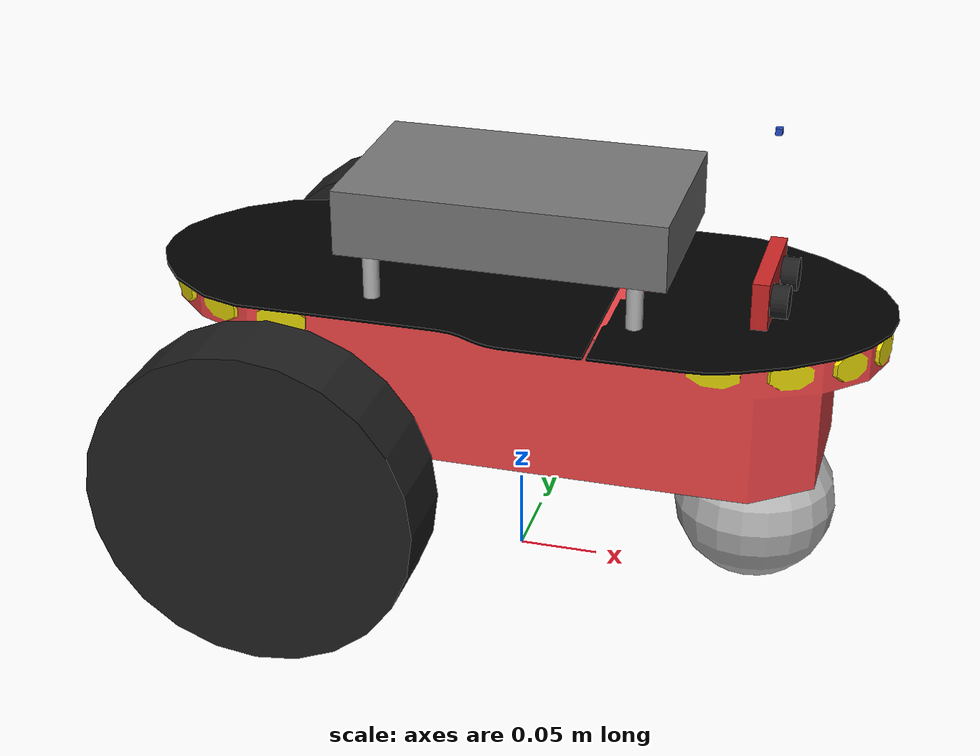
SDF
<?xml version="1.0" ?>

<sdf version="1.5">
  <!-- http://sdformat.org/spec?elem=sensor&ver=1.5 -->
  <model name="tankbot">
    <link name="chassis">
      <pose>0 0 0.11  0 0 0</pose>
      <inertial>
        <pose>0.04000000000000001 0 0  0 0 0</pose>
        <mass>2.0</mass>
        <inertia>
          <ixx>0.008333333333333335</ixx>
          <iyy>0.02833333333333334</iyy>
          <izz>0.03333333333333334</izz>
          <ixy>0</ixy>
          <ixz>0</ixz>
          <iyz>0</iyz>
        </inertia>
      </inertial>
      <collision name="collision">
        <geometry>
          <box>
            <size>0.4 0.2 0.1</size>
          </box>
        </geometry>
      </collision>
      <visual name='visual'>
        <pose>0 0 0.05 0 0 0</pose>
        <geometry>
          <mesh>
            <uri>model://pioneer2dx/meshes/chassis.dae</uri>
            <scale>0.9 0.5 0.5</scale>
          </mesh>
        </geometry>
      </visual>

      <collision name='caster_collision'>
        <pose>0.15 0 -0.05 0 0 0</pose>
        <geometry>
            <sphere>
            <radius>.05</radius>
          </sphere>
        </geometry>
        <surface>
          <friction>
            <ode>
              <mu>0</mu>
              <mu2>0</mu2>
              <slip1>1.0</slip1>
              <slip2>1.0</slip2>
            </ode>
          </friction>
        </surface>
      </collision>

      <visual name='caster_visual'>
        <pose>0.15 0 -0.05 0 0 0</pose>
        <geometry>
          <sphere>
            <radius>.05</radius>
          </sphere>
        </geometry>
      </visual>
    </link>

    <link name="wheel_rl">
      <pose>
       -0.12 0.14 0.1
       -1.5707963267948966 0 0
      </pose>
      <inertial>
        <mass>0.25</mass>
        <inertia>
          <ixx>0.0006770833333333335</ixx>
          <iyy>0.0006770833333333335</iyy>
          <izz>0.0012500000000000002</izz>
          <ixy>0</ixy>
          <ixz>0</ixz>
          <iyz>0</iyz>
        </inertia>
      </inertial>
      <collision name="collision">
        <geometry>
          <cylinder>
            <radius>0.1</radius>
            <length>0.05</length>
          </cylinder>
        </geometry>
      </collision>
      <visual name="visual">
        <geometry>
          <cylinder>
            <radius>0.1</radius>
            <length>0.05</length>
          </cylinder>
        </geometry>
        <material>
          <script>
            <uri>file://media/materials/scripts/gazebo.material</uri>
            <name>Gazebo/Black</name>
          </script>
        </material>
      </visual>
    </link>
    <joint name="wheel_rl_drive" type="revolute">
      <parent>chassis</parent>
      <child>wheel_rl</child>
      <axis>
        <xyz>0 0 1</xyz>
      </axis>
    </joint>

    <link name="wheel_rr">
      <pose>
       -0.12 -0.14 0.1
       -1.5707963267948966 0 0
      </pose>
      <inertial>
        <mass>0.25</mass>
        <inertia>
          <ixx>0.0006770833333333335</ixx>
          <iyy>0.0006770833333333335</iyy>
          <izz>0.0012500000000000002</izz>
          <ixy>0</ixy>
          <ixz>0</ixz>
          <iyz>0</iyz>
        </inertia>
      </inertial>
      <collision name="collision">
        <geometry>
          <cylinder>
            <radius>0.1</radius>
            <length>0.05</length>
          </cylinder>
        </geometry>
      </collision>
      <visual name="visual">
        <geometry>
          <cylinder>
            <radius>0.1</radius>
            <length>0.05</length>
          </cylinder>
        </geometry>
        <material>
          <script>
            <uri>file://media/materials/scripts/gazebo.material</uri>
            <name>Gazebo/Black</name>
          </script>
        </material>
      </visual>
    </link>
    <joint name="wheel_rr_drive" type="revolute">
      <parent>chassis</parent>
      <child>wheel_rr</child>
      <axis>
        <xyz>0 0 1</xyz>
      </axis>
    </joint>

    <include>
      <uri>model://ultrasonic_sensor</uri>
      <pose>
        0.15 0.0 0.2
        0.0 0.0 0.0
      </pose>
    </include>

    <joint name="sonar_joint" type="fixed">
      <child>ultrasonic_sensor::link</child>
      <parent>chassis</parent>
    </joint>

    <include>
      <uri>model://camera_sensor</uri>
      <pose>
        0.15 0.0 0.3
        0.0 0.0 0.0
      </pose>
    </include>

    <joint name="camera_joint" type="fixed">
      <child>camera_sensor::link</child>
      <parent>chassis</parent>
    </joint>

    <include>
      <uri>model://mainboard</uri>
      <pose>
        0.0 0.0 0.0
        0.0 0.0 0.0
      </pose>
    </include>

    <joint name="board_joint" type="fixed">
      <child>mainboard::boarder</child>
      <parent>chassis</parent>
    </joint>
  </model>
</sdf>

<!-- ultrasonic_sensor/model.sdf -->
<sdf version="1.7">
  <model name="ultrasonic_sensor">
    <pose>0 0 0.02 0 0 0</pose>
    <link name="link">

      <inertial>
        <mass>0.1</mass>
      </inertial>

      <visual name="visual">
        <geometry>
          <box>
            <size>0.01 0.07 0.04</size>
          </box>
        </geometry>
        <material>
          <script>
            <uri>file://media/materials/scripts/gazebo.material</uri>
            <name>Gazebo/Red</name>
          </script>
        </material>
      </visual>

      <collision name="collision">
        <pose>0 0 -0.0145 0 0 0</pose>
        <geometry>
          <box>
            <size>0.01 0.07 0.04</size>
          </box>
        </geometry>
      </collision>

      <sensor name="sonar" type="sonar">
        <pose>0.01 0 0 0 1.5 3.14</pose>
        <sonar>
          <min>0</min>
          <max>3</max>
          <radius>0.3</radius>
        </sonar>
        <plugin name="sonar" filename="libSonarPlugin.so" />
        <always_on>1</always_on>
        <update_rate>30</update_rate>
        <visualize>true</visualize>
      </sensor>

    </link>

    <link name="left_sonar">
      <pose>0.01 0.02 0.004 0 1.57 0</pose>
      <collision name="collision">
        <geometry>
          <cylinder>
            <radius>.01</radius>
            <length>.01</length>
          </cylinder>
        </geometry>
      </collision>

      <visual name="visual">
        <geometry>
          <cylinder>
            <radius>.01</radius>
            <length>.01</length>
          </cylinder>
        </geometry>
        <material>
          <script>
            <uri>file://media/materials/scripts/gazebo.material</uri>
            <name>Gazebo/Black</name>
          </script>
        </material>
      </visual>
    </link>
    <joint name="left_sonar_joint" type="fixed">
        <child>left_sonar</child>
        <parent>link</parent>
      </joint>

    <link name="right_sonar">
      <pose>0.01 -0.02 0.004 0 1.57 0</pose>
      <collision name="collision">
        <geometry>
          <cylinder>
            <radius>.01</radius>
            <length>.01</length>
          </cylinder>
        </geometry>
      </collision>

      <visual name="visual">
        <geometry>
          <cylinder>
            <radius>.01</radius>
            <length>.01</length>
          </cylinder>
        </geometry>
        <material>
          <script>
            <uri>file://media/materials/scripts/gazebo.material</uri>
            <name>Gazebo/Black</name>
          </script>
        </material>
      </visual>
    </link>
    <joint name="right_sonar_joint" type="fixed">
        <child>right_sonar</child>
        <parent>link</parent>
      </joint>

  </model>
</sdf>

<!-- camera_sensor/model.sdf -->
<sdf version="1.6">
  <model name="camera_sensor">
    <pose>0 0 0.02 0 0 0</pose>
    <link name="link">
      <inertial>
        <mass>0.1</mass>
      </inertial>

      <visual name="visual">
        <geometry>
          <box>
            <size>0.004 0.004 0.004</size>
          </box>
        </geometry>
        <material>
          <script>
            <uri>file://media/materials/scripts/gazebo.material</uri>
            <name>Gazebo/Blue</name>
          </script>
        </material>
      </visual>

      <collision name="collision">
        <pose>0 0 -0.0145 0 0 0</pose>
        <geometry>
          <box>
            <size>0.004 0.004 0.004</size>
          </box>
        </geometry>
      </collision>

      <sensor name='camera' type='camera'>
        <camera>
          <horizontal_fov>1.3962634</horizontal_fov>
          <image>
            <width>800</width>
            <height>800</height>
          </image>
          <clip>
            <near>0.02</near>
            <far>300</far>
          </clip>
        </camera>
        <always_on>1</always_on>
        <update_rate>10</update_rate>
        <visualize>1</visualize>

        <plugin name="camera_controller" filename="libCameraPlugin.so"></plugin>
      </sensor>

    </link>
  </model>
</sdf>

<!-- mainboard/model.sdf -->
<sdf version="1.7">
  <model name="mainboard">
    <link name="boarder">
        <pose>0.0 0.0 0.24 0.0 0.0 0.0</pose>
        <collision name="collision">
          <geometry>
            <box>
              <size>.2 .12 .04</size>
            </box>
          </geometry>
        </collision>

        <visual name="visual">
          <geometry>
            <box>
              <size>.2 .12 .04</size>
            </box>
          </geometry>
           <material>
             <ambient>0.46 0.46 0.46 1.0</ambient>
             <diffuse>0.46 0.46 0.46 1.0</diffuse>
             <specular>0.46 0.46 0.46 1.0</specular>
             <emissive>0.46 0.46 0.46 1.0</emissive>
           </material>
        </visual>
      </link>

    <link name="boardleg_fl">
        <pose>-0.08 0.05 0.2 0.0 0.0 0.0</pose>
        <collision name="collision">
          <geometry>
            <cylinder>
              <radius>.005</radius>
              <length>.04</length>
            </cylinder>
          </geometry>
        </collision>

        <visual name="visual">
          <geometry>
            <cylinder>
              <radius>.005</radius>
              <length>.04</length>
            </cylinder>
          </geometry>
        </visual>
      </link>
      <joint name="leg_fl_joint" type="fixed">
        <child>boardleg_fl</child>
        <parent>boarder</parent>
      </joint>

      <link name="boardleg_fr">
        <pose>-0.08 -0.05 0.2 0.0 0.0 0.0</pose>
        <collision name="collision">
          <geometry>
            <cylinder>
              <radius>.005</radius>
              <length>.04</length>
            </cylinder>
          </geometry>
        </collision>

        <visual name="visual">
          <geometry>
            <cylinder>
              <radius>.005</radius>
              <length>.04</length>
            </cylinder>
          </geometry>
        </visual>
      </link>
      <joint name="leg_fr_joint" type="fixed">
        <child>boardleg_fr</child>
        <parent>boarder</parent>
      </joint>

      <link name="boardleg_bl">
        <pose>0.08 0.05 0.2 0.0 0.0 0.0</pose>
        <collision name="collision">
          <geometry>
            <cylinder>
              <radius>.005</radius>
              <length>.04</length>
            </cylinder>
          </geometry>
        </collision>

        <visual name="visual">
          <geometry>
            <cylinder>
              <radius>.005</radius>
              <length>.04</length>
            </cylinder>
          </geometry>
        </visual>
      </link>
      <joint name="leg_bl_joint" type="fixed">
        <child>boardleg_bl</child>
        <parent>boarder</parent>
      </joint>

      <link name="boardleg_br">
        <pose>0.08 -0.05 0.2 0.0 0.0 0.0</pose>
        <collision name="collision">
          <geometry>
            <cylinder>
              <radius>.005</radius>
              <length>.04</length>
            </cylinder>
          </geometry>
        </collision>

        <visual name="visual">
          <geometry>
            <cylinder>
              <radius>.005</radius>
              <length>.04</length>
            </cylinder>
          </geometry>
        </visual>
      </link>
      <joint name="leg_br_joint" type="fixed">
        <child>boardleg_br</child>
        <parent>boarder</parent>
      </joint>

  </model>
</sdf>
